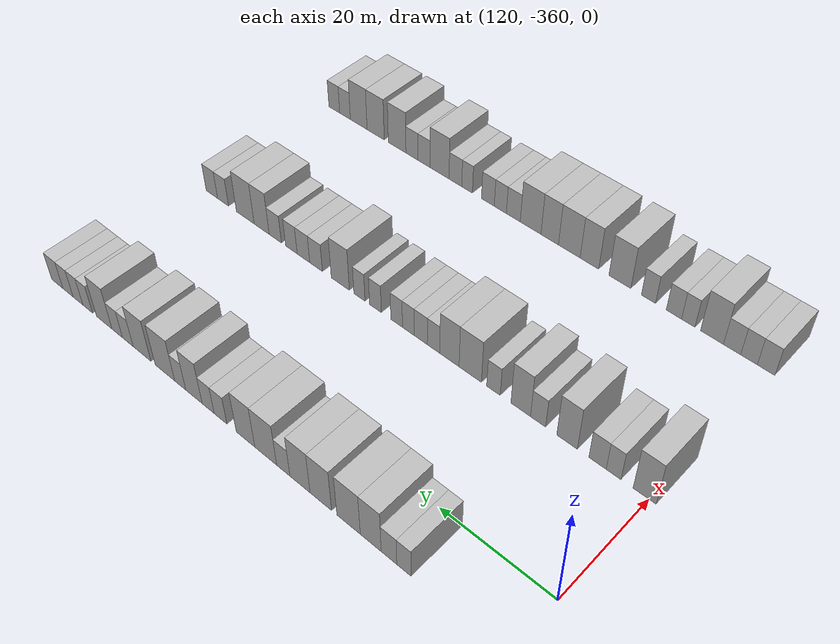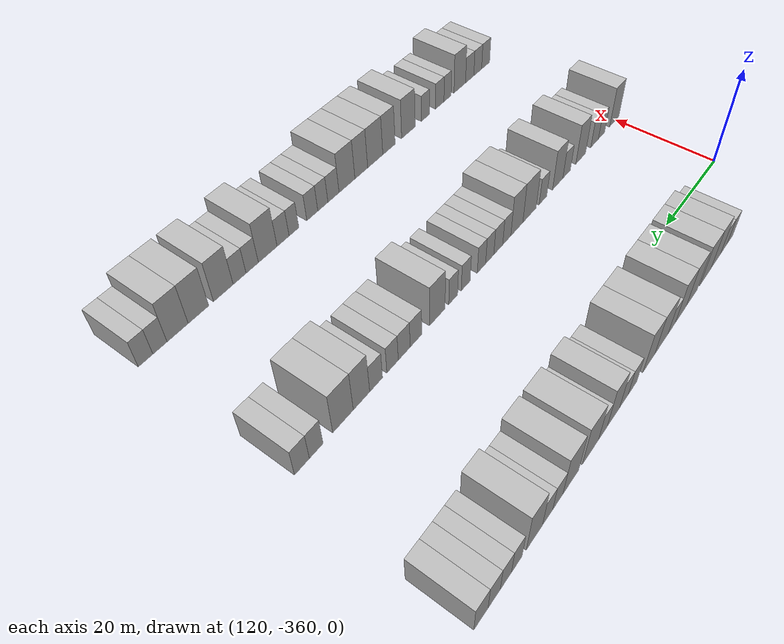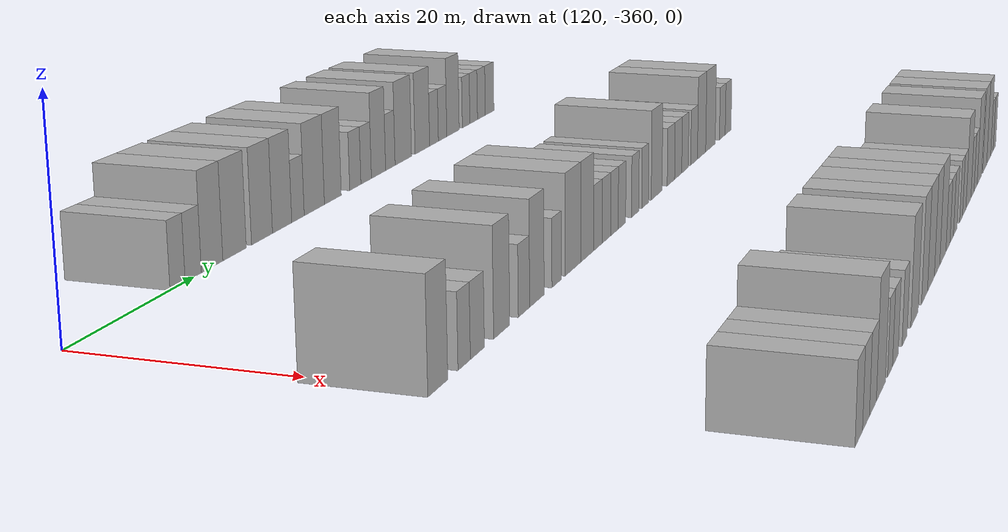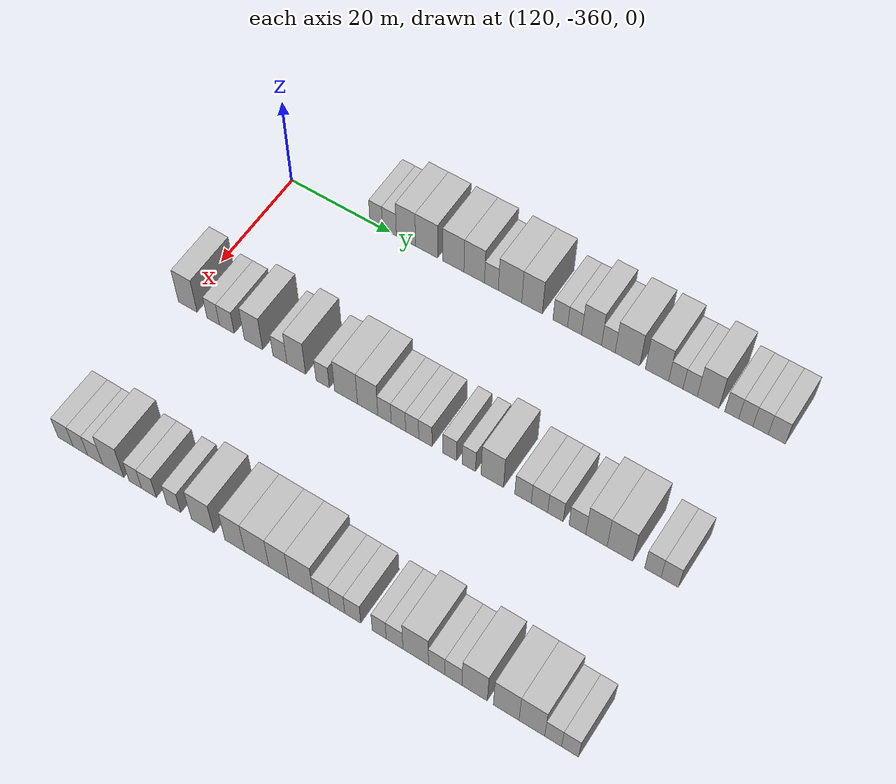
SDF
<sdf version="1.6">
 <world name="default">
  <model name="building_711">
   <static>1</static>
   <pose>115.0000 -342.8300 0 0.000000 0.000000 0.000000</pose>
   <link name="link">
    <pose>0 0 3.00 0 0 0</pose>
    <collision name="collision"><geometry><box><size>10.0000 2.5197 6.0000</size></box></geometry></collision>
    <visual name="visual">
     <cast_shadows>0</cast_shadows>
     <geometry><box><size>10.0000 2.5197 6.0000</size></box></geometry>
     <material>
      <script>
       <uri>model://HANNAS_wall/materials/scripts</uri>
       <uri>model://HANNAS_wall/materials/textures</uri>
       <name>vrc/HANNAS_wall</name>
      </script>
     </material>
    </visual>
   </link>
  </model>
  <model name="building_712">
   <static>1</static>
   <pose>115.0000 -340.1824 0 0.000000 0.000000 0.000000</pose>
   <link name="link">
    <pose>0 0 3.00 0 0 0</pose>
    <collision name="collision"><geometry><box><size>10.0000 2.7754 6.0000</size></box></geometry></collision>
    <visual name="visual">
     <cast_shadows>0</cast_shadows>
     <geometry><box><size>10.0000 2.7754 6.0000</size></box></geometry>
     <material>
      <script>
       <uri>model://HANNAS_wall/materials/scripts</uri>
       <uri>model://HANNAS_wall/materials/textures</uri>
       <name>vrc/HANNAS_wall</name>
      </script>
     </material>
    </visual>
   </link>
  </model>
  <model name="building_713">
   <static>1</static>
   <pose>115.0000 -336.8974 0 0.000000 0.000000 0.000000</pose>
   <link name="link">
    <pose>0 0 4.50 0 0 0</pose>
    <collision name="collision"><geometry><box><size>10.0000 3.7946 9.0000</size></box></geometry></collision>
    <visual name="visual">
     <cast_shadows>0</cast_shadows>
     <geometry><box><size>10.0000 3.7946 9.0000</size></box></geometry>
     <material>
      <script>
       <uri>model://HANNAS_wall/materials/scripts</uri>
       <uri>model://HANNAS_wall/materials/textures</uri>
       <name>vrc/HANNAS_wall</name>
      </script>
     </material>
    </visual>
   </link>
  </model>
  <model name="building_714">
   <static>1</static>
   <pose>115.0000 -332.8246 0 0.000000 0.000000 0.000000</pose>
   <link name="link">
    <pose>0 0 4.50 0 0 0</pose>
    <collision name="collision"><geometry><box><size>10.0000 4.3511 9.0000</size></box></geometry></collision>
    <visual name="visual">
     <cast_shadows>0</cast_shadows>
     <geometry><box><size>10.0000 4.3511 9.0000</size></box></geometry>
     <material>
      <script>
       <uri>model://HANNAS_wall/materials/scripts</uri>
       <uri>model://HANNAS_wall/materials/textures</uri>
       <name>vrc/HANNAS_wall</name>
      </script>
     </material>
    </visual>
   </link>
  </model>
  <model name="building_715">
   <static>1</static>
   <pose>115.0000 -327.5867 0 0.000000 0.000000 0.000000</pose>
   <link name="link">
    <pose>0 0 4.50 0 0 0</pose>
    <collision name="collision"><geometry><box><size>10.0000 4.1246 9.0000</size></box></geometry></collision>
    <visual name="visual">
     <cast_shadows>0</cast_shadows>
     <geometry><box><size>10.0000 4.1246 9.0000</size></box></geometry>
     <material>
      <script>
       <uri>model://HANNAS_wall/materials/scripts</uri>
       <uri>model://HANNAS_wall/materials/textures</uri>
       <name>vrc/HANNAS_wall</name>
      </script>
     </material>
    </visual>
   </link>
  </model>
  <model name="building_716">
   <static>1</static>
   <pose>115.0000 -323.5428 0 0.000000 0.000000 0.000000</pose>
   <link name="link">
    <pose>0 0 4.50 0 0 0</pose>
    <collision name="collision"><geometry><box><size>10.0000 3.9632 9.0000</size></box></geometry></collision>
    <visual name="visual">
     <cast_shadows>0</cast_shadows>
     <geometry><box><size>10.0000 3.9632 9.0000</size></box></geometry>
     <material>
      <script>
       <uri>model://HANNAS_wall/materials/scripts</uri>
       <uri>model://HANNAS_wall/materials/textures</uri>
       <name>vrc/HANNAS_wall</name>
      </script>
     </material>
    </visual>
   </link>
  </model>
  <model name="building_717">
   <static>1</static>
   <pose>115.0000 -320.2354 0 0.000000 0.000000 0.000000</pose>
   <link name="link">
    <pose>0 0 3.00 0 0 0</pose>
    <collision name="collision"><geometry><box><size>10.0000 2.6515 6.0000</size></box></geometry></collision>
    <visual name="visual">
     <cast_shadows>0</cast_shadows>
     <geometry><box><size>10.0000 2.6515 6.0000</size></box></geometry>
     <material>
      <script>
       <uri>model://HANNAS_wall/materials/scripts</uri>
       <uri>model://HANNAS_wall/materials/textures</uri>
       <name>vrc/HANNAS_wall</name>
      </script>
     </material>
    </visual>
   </link>
  </model>
  <model name="building_718">
   <static>1</static>
   <pose>115.0000 -316.6786 0 0.000000 0.000000 0.000000</pose>
   <link name="link">
    <pose>0 0 4.50 0 0 0</pose>
    <collision name="collision"><geometry><box><size>10.0000 4.4620 9.0000</size></box></geometry></collision>
    <visual name="visual">
     <cast_shadows>0</cast_shadows>
     <geometry><box><size>10.0000 4.4620 9.0000</size></box></geometry>
     <material>
      <script>
       <uri>model://HANNAS_wall/materials/scripts</uri>
       <uri>model://HANNAS_wall/materials/textures</uri>
       <name>vrc/HANNAS_wall</name>
      </script>
     </material>
    </visual>
   </link>
  </model>
  <model name="building_719">
   <static>1</static>
   <pose>115.0000 -312.5042 0 0.000000 0.000000 0.000000</pose>
   <link name="link">
    <pose>0 0 4.50 0 0 0</pose>
    <collision name="collision"><geometry><box><size>10.0000 3.8867 9.0000</size></box></geometry></collision>
    <visual name="visual">
     <cast_shadows>0</cast_shadows>
     <geometry><box><size>10.0000 3.8867 9.0000</size></box></geometry>
     <material>
      <script>
       <uri>model://HANNAS_wall/materials/scripts</uri>
       <uri>model://HANNAS_wall/materials/textures</uri>
       <name>vrc/HANNAS_wall</name>
      </script>
     </material>
    </visual>
   </link>
  </model>
  <model name="building_720">
   <static>1</static>
   <pose>115.0000 -307.1983 0 0.000000 0.000000 0.000000</pose>
   <link name="link">
    <pose>0 0 3.00 0 0 0</pose>
    <collision name="collision"><geometry><box><size>10.0000 2.7251 6.0000</size></box></geometry></collision>
    <visual name="visual">
     <cast_shadows>0</cast_shadows>
     <geometry><box><size>10.0000 2.7251 6.0000</size></box></geometry>
     <material>
      <script>
       <uri>model://HANNAS_wall/materials/scripts</uri>
       <uri>model://HANNAS_wall/materials/textures</uri>
       <name>vrc/HANNAS_wall</name>
      </script>
     </material>
    </visual>
   </link>
  </model>
  <model name="building_721">
   <static>1</static>
   <pose>115.0000 -304.5251 0 0.000000 0.000000 0.000000</pose>
   <link name="link">
    <pose>0 0 3.00 0 0 0</pose>
    <collision name="collision"><geometry><box><size>10.0000 2.6214 6.0000</size></box></geometry></collision>
    <visual name="visual">
     <cast_shadows>0</cast_shadows>
     <geometry><box><size>10.0000 2.6214 6.0000</size></box></geometry>
     <material>
      <script>
       <uri>model://HANNAS_wall/materials/scripts</uri>
       <uri>model://HANNAS_wall/materials/textures</uri>
       <name>vrc/HANNAS_wall</name>
      </script>
     </material>
    </visual>
   </link>
  </model>
  <model name="building_722">
   <static>1</static>
   <pose>115.0000 -301.3845 0 0.000000 0.000000 0.000000</pose>
   <link name="link">
    <pose>0 0 4.50 0 0 0</pose>
    <collision name="collision"><geometry><box><size>10.0000 3.6598 9.0000</size></box></geometry></collision>
    <visual name="visual">
     <cast_shadows>0</cast_shadows>
     <geometry><box><size>10.0000 3.6598 9.0000</size></box></geometry>
     <material>
      <script>
       <uri>model://HANNAS_wall/materials/scripts</uri>
       <uri>model://HANNAS_wall/materials/textures</uri>
       <name>vrc/HANNAS_wall</name>
      </script>
     </material>
    </visual>
   </link>
  </model>
  <model name="building_723">
   <static>1</static>
   <pose>115.0000 -298.3051 0 0.000000 0.000000 0.000000</pose>
   <link name="link">
    <pose>0 0 3.00 0 0 0</pose>
    <collision name="collision"><geometry><box><size>10.0000 2.4990 6.0000</size></box></geometry></collision>
    <visual name="visual">
     <cast_shadows>0</cast_shadows>
     <geometry><box><size>10.0000 2.4990 6.0000</size></box></geometry>
     <material>
      <script>
       <uri>model://HANNAS_wall/materials/scripts</uri>
       <uri>model://HANNAS_wall/materials/textures</uri>
       <name>vrc/HANNAS_wall</name>
      </script>
     </material>
    </visual>
   </link>
  </model>
  <model name="building_724">
   <static>1</static>
   <pose>115.0000 -294.8097 0 0.000000 0.000000 0.000000</pose>
   <link name="link">
    <pose>0 0 4.50 0 0 0</pose>
    <collision name="collision"><geometry><box><size>10.0000 4.4918 9.0000</size></box></geometry></collision>
    <visual name="visual">
     <cast_shadows>0</cast_shadows>
     <geometry><box><size>10.0000 4.4918 9.0000</size></box></geometry>
     <material>
      <script>
       <uri>model://HANNAS_wall/materials/scripts</uri>
       <uri>model://HANNAS_wall/materials/textures</uri>
       <name>vrc/HANNAS_wall</name>
      </script>
     </material>
    </visual>
   </link>
  </model>
  <model name="building_725">
   <static>1</static>
   <pose>115.0000 -289.4669 0 0.000000 0.000000 0.000000</pose>
   <link name="link">
    <pose>0 0 4.50 0 0 0</pose>
    <collision name="collision"><geometry><box><size>10.0000 4.1937 9.0000</size></box></geometry></collision>
    <visual name="visual">
     <cast_shadows>0</cast_shadows>
     <geometry><box><size>10.0000 4.1937 9.0000</size></box></geometry>
     <material>
      <script>
       <uri>model://HANNAS_wall/materials/scripts</uri>
       <uri>model://HANNAS_wall/materials/textures</uri>
       <name>vrc/HANNAS_wall</name>
      </script>
     </material>
    </visual>
   </link>
  </model>
  <model name="building_726">
   <static>1</static>
   <pose>115.0000 -286.0790 0 0.000000 0.000000 0.000000</pose>
   <link name="link">
    <pose>0 0 3.00 0 0 0</pose>
    <collision name="collision"><geometry><box><size>10.0000 2.5822 6.0000</size></box></geometry></collision>
    <visual name="visual">
     <cast_shadows>0</cast_shadows>
     <geometry><box><size>10.0000 2.5822 6.0000</size></box></geometry>
     <material>
      <script>
       <uri>model://HANNAS_wall/materials/scripts</uri>
       <uri>model://HANNAS_wall/materials/textures</uri>
       <name>vrc/HANNAS_wall</name>
      </script>
     </material>
    </visual>
   </link>
  </model>
  <model name="building_727">
   <static>1</static>
   <pose>115.0000 -283.5156 0 0.000000 0.000000 0.000000</pose>
   <link name="link">
    <pose>0 0 3.00 0 0 0</pose>
    <collision name="collision"><geometry><box><size>10.0000 2.5445 6.0000</size></box></geometry></collision>
    <visual name="visual">
     <cast_shadows>0</cast_shadows>
     <geometry><box><size>10.0000 2.5445 6.0000</size></box></geometry>
     <material>
      <script>
       <uri>model://HANNAS_wall/materials/scripts</uri>
       <uri>model://HANNAS_wall/materials/textures</uri>
       <name>vrc/HANNAS_wall</name>
      </script>
     </material>
    </visual>
   </link>
  </model>
  <model name="building_728">
   <static>1</static>
   <pose>115.0000 -280.3135 0 0.000000 0.000000 0.000000</pose>
   <link name="link">
    <pose>0 0 4.50 0 0 0</pose>
    <collision name="collision"><geometry><box><size>10.0000 3.8596 9.0000</size></box></geometry></collision>
    <visual name="visual">
     <cast_shadows>0</cast_shadows>
     <geometry><box><size>10.0000 3.8596 9.0000</size></box></geometry>
     <material>
      <script>
       <uri>model://HANNAS_wall/materials/scripts</uri>
       <uri>model://HANNAS_wall/materials/textures</uri>
       <name>vrc/HANNAS_wall</name>
      </script>
     </material>
    </visual>
   </link>
  </model>
  <model name="building_729">
   <static>1</static>
   <pose>115.0000 -276.1591 0 0.000000 0.000000 0.000000</pose>
   <link name="link">
    <pose>0 0 3.00 0 0 0</pose>
    <collision name="collision"><geometry><box><size>10.0000 2.4493 6.0000</size></box></geometry></collision>
    <visual name="visual">
     <cast_shadows>0</cast_shadows>
     <geometry><box><size>10.0000 2.4493 6.0000</size></box></geometry>
     <material>
      <script>
       <uri>model://HANNAS_wall/materials/scripts</uri>
       <uri>model://HANNAS_wall/materials/textures</uri>
       <name>vrc/HANNAS_wall</name>
      </script>
     </material>
    </visual>
   </link>
  </model>
  <model name="building_730">
   <static>1</static>
   <pose>115.0000 -273.6855 0 0.000000 0.000000 0.000000</pose>
   <link name="link">
    <pose>0 0 3.00 0 0 0</pose>
    <collision name="collision"><geometry><box><size>10.0000 2.4980 6.0000</size></box></geometry></collision>
    <visual name="visual">
     <cast_shadows>0</cast_shadows>
     <geometry><box><size>10.0000 2.4980 6.0000</size></box></geometry>
     <material>
      <script>
       <uri>model://HANNAS_wall/materials/scripts</uri>
       <uri>model://HANNAS_wall/materials/textures</uri>
       <name>vrc/HANNAS_wall</name>
      </script>
     </material>
    </visual>
   </link>
  </model>
  <model name="building_731">
   <static>1</static>
   <pose>115.0000 -271.1199 0 0.000000 0.000000 0.000000</pose>
   <link name="link">
    <pose>0 0 3.00 0 0 0</pose>
    <collision name="collision"><geometry><box><size>10.0000 2.6331 6.0000</size></box></geometry></collision>
    <visual name="visual">
     <cast_shadows>0</cast_shadows>
     <geometry><box><size>10.0000 2.6331 6.0000</size></box></geometry>
     <material>
      <script>
       <uri>model://HANNAS_wall/materials/scripts</uri>
       <uri>model://HANNAS_wall/materials/textures</uri>
       <name>vrc/HANNAS_wall</name>
      </script>
     </material>
    </visual>
   </link>
  </model>
  <model name="building_732">
   <static>1</static>
   <pose>115.0000 -268.3117 0 0.000000 0.000000 0.000000</pose>
   <link name="link">
    <pose>0 0 3.00 0 0 0</pose>
    <collision name="collision"><geometry><box><size>10.0000 2.9835 6.0000</size></box></geometry></collision>
    <visual name="visual">
     <cast_shadows>0</cast_shadows>
     <geometry><box><size>10.0000 2.9835 6.0000</size></box></geometry>
     <material>
      <script>
       <uri>model://HANNAS_wall/materials/scripts</uri>
       <uri>model://HANNAS_wall/materials/textures</uri>
       <name>vrc/HANNAS_wall</name>
      </script>
     </material>
    </visual>
   </link>
  </model>
  <model name="building_937">
   <static>1</static>
   <pose>145.0000 -359.2650 0 0.000000 0.000000 0.000000</pose>
   <link name="link">
    <pose>0 0 4.50 0 0 0</pose>
    <collision name="collision"><geometry><box><size>10.0000 3.7671 9.0000</size></box></geometry></collision>
    <visual name="visual">
     <cast_shadows>0</cast_shadows>
     <geometry><box><size>10.0000 3.7671 9.0000</size></box></geometry>
     <material>
      <script>
       <uri>model://HANNAS_wall/materials/scripts</uri>
       <uri>model://HANNAS_wall/materials/textures</uri>
       <name>vrc/HANNAS_wall</name>
      </script>
     </material>
    </visual>
   </link>
  </model>
  <model name="building_938">
   <static>1</static>
   <pose>145.0000 -354.1302 0 0.000000 0.000000 0.000000</pose>
   <link name="link">
    <pose>0 0 3.00 0 0 0</pose>
    <collision name="collision"><geometry><box><size>10.0000 2.5025 6.0000</size></box></geometry></collision>
    <visual name="visual">
     <cast_shadows>0</cast_shadows>
     <geometry><box><size>10.0000 2.5025 6.0000</size></box></geometry>
     <material>
      <script>
       <uri>model://HANNAS_wall/materials/scripts</uri>
       <uri>model://HANNAS_wall/materials/textures</uri>
       <name>vrc/HANNAS_wall</name>
      </script>
     </material>
    </visual>
   </link>
  </model>
  <model name="building_939">
   <static>1</static>
   <pose>145.0000 -351.4086 0 0.000000 0.000000 0.000000</pose>
   <link name="link">
    <pose>0 0 3.00 0 0 0</pose>
    <collision name="collision"><geometry><box><size>10.0000 2.9406 6.0000</size></box></geometry></collision>
    <visual name="visual">
     <cast_shadows>0</cast_shadows>
     <geometry><box><size>10.0000 2.9406 6.0000</size></box></geometry>
     <material>
      <script>
       <uri>model://HANNAS_wall/materials/scripts</uri>
       <uri>model://HANNAS_wall/materials/textures</uri>
       <name>vrc/HANNAS_wall</name>
      </script>
     </material>
    </visual>
   </link>
  </model>
  <model name="building_940">
   <static>1</static>
   <pose>145.0000 -346.1285 0 0.000000 0.000000 0.000000</pose>
   <link name="link">
    <pose>0 0 4.50 0 0 0</pose>
    <collision name="collision"><geometry><box><size>10.0000 3.6195 9.0000</size></box></geometry></collision>
    <visual name="visual">
     <cast_shadows>0</cast_shadows>
     <geometry><box><size>10.0000 3.6195 9.0000</size></box></geometry>
     <material>
      <script>
       <uri>model://HANNAS_wall/materials/scripts</uri>
       <uri>model://HANNAS_wall/materials/textures</uri>
       <name>vrc/HANNAS_wall</name>
      </script>
     </material>
    </visual>
   </link>
  </model>
  <model name="building_941">
   <static>1</static>
   <pose>145.0000 -340.9537 0 0.000000 0.000000 0.000000</pose>
   <link name="link">
    <pose>0 0 3.00 0 0 0</pose>
    <collision name="collision"><geometry><box><size>10.0000 2.7301 6.0000</size></box></geometry></collision>
    <visual name="visual">
     <cast_shadows>0</cast_shadows>
     <geometry><box><size>10.0000 2.7301 6.0000</size></box></geometry>
     <material>
      <script>
       <uri>model://HANNAS_wall/materials/scripts</uri>
       <uri>model://HANNAS_wall/materials/textures</uri>
       <name>vrc/HANNAS_wall</name>
      </script>
     </material>
    </visual>
   </link>
  </model>
  <model name="building_942">
   <static>1</static>
   <pose>145.0000 -337.7858 0 0.000000 0.000000 0.000000</pose>
   <link name="link">
    <pose>0 0 4.50 0 0 0</pose>
    <collision name="collision"><geometry><box><size>10.0000 3.6058 9.0000</size></box></geometry></collision>
    <visual name="visual">
     <cast_shadows>0</cast_shadows>
     <geometry><box><size>10.0000 3.6058 9.0000</size></box></geometry>
     <material>
      <script>
       <uri>model://HANNAS_wall/materials/scripts</uri>
       <uri>model://HANNAS_wall/materials/textures</uri>
       <name>vrc/HANNAS_wall</name>
      </script>
     </material>
    </visual>
   </link>
  </model>
  <model name="building_943">
   <static>1</static>
   <pose>145.0000 -332.6990 0 0.000000 0.000000 0.000000</pose>
   <link name="link">
    <pose>0 0 3.00 0 0 0</pose>
    <collision name="collision"><geometry><box><size>10.0000 2.5679 6.0000</size></box></geometry></collision>
    <visual name="visual">
     <cast_shadows>0</cast_shadows>
     <geometry><box><size>10.0000 2.5679 6.0000</size></box></geometry>
     <material>
      <script>
       <uri>model://HANNAS_wall/materials/scripts</uri>
       <uri>model://HANNAS_wall/materials/textures</uri>
       <name>vrc/HANNAS_wall</name>
      </script>
     </material>
    </visual>
   </link>
  </model>
  <model name="building_944">
   <static>1</static>
   <pose>145.0000 -328.2437 0 0.000000 0.000000 0.000000</pose>
   <link name="link">
    <pose>0 0 4.50 0 0 0</pose>
    <collision name="collision"><geometry><box><size>10.0000 4.3427 9.0000</size></box></geometry></collision>
    <visual name="visual">
     <cast_shadows>0</cast_shadows>
     <geometry><box><size>10.0000 4.3427 9.0000</size></box></geometry>
     <material>
      <script>
       <uri>model://HANNAS_wall/materials/scripts</uri>
       <uri>model://HANNAS_wall/materials/textures</uri>
       <name>vrc/HANNAS_wall</name>
      </script>
     </material>
    </visual>
   </link>
  </model>
  <model name="building_945">
   <static>1</static>
   <pose>145.0000 -324.1624 0 0.000000 0.000000 0.000000</pose>
   <link name="link">
    <pose>0 0 4.50 0 0 0</pose>
    <collision name="collision"><geometry><box><size>10.0000 3.8198 9.0000</size></box></geometry></collision>
    <visual name="visual">
     <cast_shadows>0</cast_shadows>
     <geometry><box><size>10.0000 3.8198 9.0000</size></box></geometry>
     <material>
      <script>
       <uri>model://HANNAS_wall/materials/scripts</uri>
       <uri>model://HANNAS_wall/materials/textures</uri>
       <name>vrc/HANNAS_wall</name>
      </script>
     </material>
    </visual>
   </link>
  </model>
  <model name="building_946">
   <static>1</static>
   <pose>145.0000 -321.0041 0 0.000000 0.000000 0.000000</pose>
   <link name="link">
    <pose>0 0 3.00 0 0 0</pose>
    <collision name="collision"><geometry><box><size>10.0000 2.4968 6.0000</size></box></geometry></collision>
    <visual name="visual">
     <cast_shadows>0</cast_shadows>
     <geometry><box><size>10.0000 2.4968 6.0000</size></box></geometry>
     <material>
      <script>
       <uri>model://HANNAS_wall/materials/scripts</uri>
       <uri>model://HANNAS_wall/materials/textures</uri>
       <name>vrc/HANNAS_wall</name>
      </script>
     </material>
    </visual>
   </link>
  </model>
  <model name="building_947">
   <static>1</static>
   <pose>145.0000 -318.4106 0 0.000000 0.000000 0.000000</pose>
   <link name="link">
    <pose>0 0 3.00 0 0 0</pose>
    <collision name="collision"><geometry><box><size>10.0000 2.6902 6.0000</size></box></geometry></collision>
    <visual name="visual">
     <cast_shadows>0</cast_shadows>
     <geometry><box><size>10.0000 2.6902 6.0000</size></box></geometry>
     <material>
      <script>
       <uri>model://HANNAS_wall/materials/scripts</uri>
       <uri>model://HANNAS_wall/materials/textures</uri>
       <name>vrc/HANNAS_wall</name>
      </script>
     </material>
    </visual>
   </link>
  </model>
  <model name="building_948">
   <static>1</static>
   <pose>145.0000 -315.8543 0 0.000000 0.000000 0.000000</pose>
   <link name="link">
    <pose>0 0 3.00 0 0 0</pose>
    <collision name="collision"><geometry><box><size>10.0000 2.4224 6.0000</size></box></geometry></collision>
    <visual name="visual">
     <cast_shadows>0</cast_shadows>
     <geometry><box><size>10.0000 2.4224 6.0000</size></box></geometry>
     <material>
      <script>
       <uri>model://HANNAS_wall/materials/scripts</uri>
       <uri>model://HANNAS_wall/materials/textures</uri>
       <name>vrc/HANNAS_wall</name>
      </script>
     </material>
    </visual>
   </link>
  </model>
  <model name="building_949">
   <static>1</static>
   <pose>145.0000 -313.4280 0 0.000000 0.000000 0.000000</pose>
   <link name="link">
    <pose>0 0 3.00 0 0 0</pose>
    <collision name="collision"><geometry><box><size>10.0000 2.4303 6.0000</size></box></geometry></collision>
    <visual name="visual">
     <cast_shadows>0</cast_shadows>
     <geometry><box><size>10.0000 2.4303 6.0000</size></box></geometry>
     <material>
      <script>
       <uri>model://HANNAS_wall/materials/scripts</uri>
       <uri>model://HANNAS_wall/materials/textures</uri>
       <name>vrc/HANNAS_wall</name>
      </script>
     </material>
    </visual>
   </link>
  </model>
  <model name="building_950">
   <static>1</static>
   <pose>145.0000 -308.9562 0 0.000000 0.000000 0.000000</pose>
   <link name="link">
    <pose>0 0 3.00 0 0 0</pose>
    <collision name="collision"><geometry><box><size>10.0000 2.5133 6.0000</size></box></geometry></collision>
    <visual name="visual">
     <cast_shadows>0</cast_shadows>
     <geometry><box><size>10.0000 2.5133 6.0000</size></box></geometry>
     <material>
      <script>
       <uri>model://HANNAS_wall/materials/scripts</uri>
       <uri>model://HANNAS_wall/materials/textures</uri>
       <name>vrc/HANNAS_wall</name>
      </script>
     </material>
    </visual>
   </link>
  </model>
  <model name="building_951">
   <static>1</static>
   <pose>145.0000 -305.4920 0 0.000000 0.000000 0.000000</pose>
   <link name="link">
    <pose>0 0 3.00 0 0 0</pose>
    <collision name="collision"><geometry><box><size>10.0000 2.4150 6.0000</size></box></geometry></collision>
    <visual name="visual">
     <cast_shadows>0</cast_shadows>
     <geometry><box><size>10.0000 2.4150 6.0000</size></box></geometry>
     <material>
      <script>
       <uri>model://HANNAS_wall/materials/scripts</uri>
       <uri>model://HANNAS_wall/materials/textures</uri>
       <name>vrc/HANNAS_wall</name>
      </script>
     </material>
    </visual>
   </link>
  </model>
  <model name="building_952">
   <static>1</static>
   <pose>145.0000 -301.2742 0 0.000000 0.000000 0.000000</pose>
   <link name="link">
    <pose>0 0 4.50 0 0 0</pose>
    <collision name="collision"><geometry><box><size>10.0000 4.0207 9.0000</size></box></geometry></collision>
    <visual name="visual">
     <cast_shadows>0</cast_shadows>
     <geometry><box><size>10.0000 4.0207 9.0000</size></box></geometry>
     <material>
      <script>
       <uri>model://HANNAS_wall/materials/scripts</uri>
       <uri>model://HANNAS_wall/materials/textures</uri>
       <name>vrc/HANNAS_wall</name>
      </script>
     </material>
    </visual>
   </link>
  </model>
  <model name="building_953">
   <static>1</static>
   <pose>145.0000 -295.8078 0 0.000000 0.000000 0.000000</pose>
   <link name="link">
    <pose>0 0 3.00 0 0 0</pose>
    <collision name="collision"><geometry><box><size>10.0000 2.9121 6.0000</size></box></geometry></collision>
    <visual name="visual">
     <cast_shadows>0</cast_shadows>
     <geometry><box><size>10.0000 2.9121 6.0000</size></box></geometry>
     <material>
      <script>
       <uri>model://HANNAS_wall/materials/scripts</uri>
       <uri>model://HANNAS_wall/materials/textures</uri>
       <name>vrc/HANNAS_wall</name>
      </script>
     </material>
    </visual>
   </link>
  </model>
  <model name="building_954">
   <static>1</static>
   <pose>145.0000 -292.9018 0 0.000000 0.000000 0.000000</pose>
   <link name="link">
    <pose>0 0 3.00 0 0 0</pose>
    <collision name="collision"><geometry><box><size>10.0000 2.9000 6.0000</size></box></geometry></collision>
    <visual name="visual">
     <cast_shadows>0</cast_shadows>
     <geometry><box><size>10.0000 2.9000 6.0000</size></box></geometry>
     <material>
      <script>
       <uri>model://HANNAS_wall/materials/scripts</uri>
       <uri>model://HANNAS_wall/materials/textures</uri>
       <name>vrc/HANNAS_wall</name>
      </script>
     </material>
    </visual>
   </link>
  </model>
  <model name="building_955">
   <static>1</static>
   <pose>145.0000 -290.0953 0 0.000000 0.000000 0.000000</pose>
   <link name="link">
    <pose>0 0 3.00 0 0 0</pose>
    <collision name="collision"><geometry><box><size>10.0000 2.7130 6.0000</size></box></geometry></collision>
    <visual name="visual">
     <cast_shadows>0</cast_shadows>
     <geometry><box><size>10.0000 2.7130 6.0000</size></box></geometry>
     <material>
      <script>
       <uri>model://HANNAS_wall/materials/scripts</uri>
       <uri>model://HANNAS_wall/materials/textures</uri>
       <name>vrc/HANNAS_wall</name>
      </script>
     </material>
    </visual>
   </link>
  </model>
  <model name="building_956">
   <static>1</static>
   <pose>145.0000 -286.2714 0 0.000000 0.000000 0.000000</pose>
   <link name="link">
    <pose>0 0 3.00 0 0 0</pose>
    <collision name="collision"><geometry><box><size>10.0000 2.9348 6.0000</size></box></geometry></collision>
    <visual name="visual">
     <cast_shadows>0</cast_shadows>
     <geometry><box><size>10.0000 2.9348 6.0000</size></box></geometry>
     <material>
      <script>
       <uri>model://HANNAS_wall/materials/scripts</uri>
       <uri>model://HANNAS_wall/materials/textures</uri>
       <name>vrc/HANNAS_wall</name>
      </script>
     </material>
    </visual>
   </link>
  </model>
  <model name="building_957">
   <static>1</static>
   <pose>145.0000 -282.9762 0 0.000000 0.000000 0.000000</pose>
   <link name="link">
    <pose>0 0 4.50 0 0 0</pose>
    <collision name="collision"><geometry><box><size>10.0000 3.6557 9.0000</size></box></geometry></collision>
    <visual name="visual">
     <cast_shadows>0</cast_shadows>
     <geometry><box><size>10.0000 3.6557 9.0000</size></box></geometry>
     <material>
      <script>
       <uri>model://HANNAS_wall/materials/scripts</uri>
       <uri>model://HANNAS_wall/materials/textures</uri>
       <name>vrc/HANNAS_wall</name>
      </script>
     </material>
    </visual>
   </link>
  </model>
  <model name="building_958">
   <static>1</static>
   <pose>145.0000 -278.9480 0 0.000000 0.000000 0.000000</pose>
   <link name="link">
    <pose>0 0 4.50 0 0 0</pose>
    <collision name="collision"><geometry><box><size>10.0000 4.4007 9.0000</size></box></geometry></collision>
    <visual name="visual">
     <cast_shadows>0</cast_shadows>
     <geometry><box><size>10.0000 4.4007 9.0000</size></box></geometry>
     <material>
      <script>
       <uri>model://HANNAS_wall/materials/scripts</uri>
       <uri>model://HANNAS_wall/materials/textures</uri>
       <name>vrc/HANNAS_wall</name>
      </script>
     </material>
    </visual>
   </link>
  </model>
  <model name="building_959">
   <static>1</static>
   <pose>145.0000 -273.3610 0 0.000000 0.000000 0.000000</pose>
   <link name="link">
    <pose>0 0 3.00 0 0 0</pose>
    <collision name="collision"><geometry><box><size>10.0000 2.7732 6.0000</size></box></geometry></collision>
    <visual name="visual">
     <cast_shadows>0</cast_shadows>
     <geometry><box><size>10.0000 2.7732 6.0000</size></box></geometry>
     <material>
      <script>
       <uri>model://HANNAS_wall/materials/scripts</uri>
       <uri>model://HANNAS_wall/materials/textures</uri>
       <name>vrc/HANNAS_wall</name>
      </script>
     </material>
    </visual>
   </link>
  </model>
  <model name="building_960">
   <static>1</static>
   <pose>145.0000 -270.5081 0 0.000000 0.000000 0.000000</pose>
   <link name="link">
    <pose>0 0 3.00 0 0 0</pose>
    <collision name="collision"><geometry><box><size>10.0000 2.9324 6.0000</size></box></geometry></collision>
    <visual name="visual">
     <cast_shadows>0</cast_shadows>
     <geometry><box><size>10.0000 2.9324 6.0000</size></box></geometry>
     <material>
      <script>
       <uri>model://HANNAS_wall/materials/scripts</uri>
       <uri>model://HANNAS_wall/materials/textures</uri>
       <name>vrc/HANNAS_wall</name>
      </script>
     </material>
    </visual>
   </link>
  </model>
  <model name="building_1162">
   <static>1</static>
   <pose>175.0000 -360.0088 0 0.000000 0.000000 0.000000</pose>
   <link name="link">
    <pose>0 0 3.00 0 0 0</pose>
    <collision name="collision"><geometry><box><size>10.0000 2.9721 6.0000</size></box></geometry></collision>
    <visual name="visual">
     <cast_shadows>0</cast_shadows>
     <geometry><box><size>10.0000 2.9721 6.0000</size></box></geometry>
     <material>
      <script>
       <uri>model://HANNAS_wall/materials/scripts</uri>
       <uri>model://HANNAS_wall/materials/textures</uri>
       <name>vrc/HANNAS_wall</name>
      </script>
     </material>
    </visual>
   </link>
  </model>
  <model name="building_1163">
   <static>1</static>
   <pose>175.0000 -357.0963 0 0.000000 0.000000 0.000000</pose>
   <link name="link">
    <pose>0 0 3.00 0 0 0</pose>
    <collision name="collision"><geometry><box><size>10.0000 2.8529 6.0000</size></box></geometry></collision>
    <visual name="visual">
     <cast_shadows>0</cast_shadows>
     <geometry><box><size>10.0000 2.8529 6.0000</size></box></geometry>
     <material>
      <script>
       <uri>model://HANNAS_wall/materials/scripts</uri>
       <uri>model://HANNAS_wall/materials/textures</uri>
       <name>vrc/HANNAS_wall</name>
      </script>
     </material>
    </visual>
   </link>
  </model>
  <model name="building_1164">
   <static>1</static>
   <pose>175.0000 -354.1758 0 0.000000 0.000000 0.000000</pose>
   <link name="link">
    <pose>0 0 3.00 0 0 0</pose>
    <collision name="collision"><geometry><box><size>10.0000 2.9881 6.0000</size></box></geometry></collision>
    <visual name="visual">
     <cast_shadows>0</cast_shadows>
     <geometry><box><size>10.0000 2.9881 6.0000</size></box></geometry>
     <material>
      <script>
       <uri>model://HANNAS_wall/materials/scripts</uri>
       <uri>model://HANNAS_wall/materials/textures</uri>
       <name>vrc/HANNAS_wall</name>
      </script>
     </material>
    </visual>
   </link>
  </model>
  <model name="building_1165">
   <static>1</static>
   <pose>175.0000 -350.6470 0 0.000000 0.000000 0.000000</pose>
   <link name="link">
    <pose>0 0 4.50 0 0 0</pose>
    <collision name="collision"><geometry><box><size>10.0000 4.0694 9.0000</size></box></geometry></collision>
    <visual name="visual">
     <cast_shadows>0</cast_shadows>
     <geometry><box><size>10.0000 4.0694 9.0000</size></box></geometry>
     <material>
      <script>
       <uri>model://HANNAS_wall/materials/scripts</uri>
       <uri>model://HANNAS_wall/materials/textures</uri>
       <name>vrc/HANNAS_wall</name>
      </script>
     </material>
    </visual>
   </link>
  </model>
  <model name="building_1166">
   <static>1</static>
   <pose>175.0000 -346.3978 0 0.000000 0.000000 0.000000</pose>
   <link name="link">
    <pose>0 0 3.00 0 0 0</pose>
    <collision name="collision"><geometry><box><size>10.0000 2.4291 6.0000</size></box></geometry></collision>
    <visual name="visual">
     <cast_shadows>0</cast_shadows>
     <geometry><box><size>10.0000 2.4291 6.0000</size></box></geometry>
     <material>
      <script>
       <uri>model://HANNAS_wall/materials/scripts</uri>
       <uri>model://HANNAS_wall/materials/textures</uri>
       <name>vrc/HANNAS_wall</name>
      </script>
     </material>
    </visual>
   </link>
  </model>
  <model name="building_1167">
   <static>1</static>
   <pose>175.0000 -343.7824 0 0.000000 0.000000 0.000000</pose>
   <link name="link">
    <pose>0 0 3.00 0 0 0</pose>
    <collision name="collision"><geometry><box><size>10.0000 2.8017 6.0000</size></box></geometry></collision>
    <visual name="visual">
     <cast_shadows>0</cast_shadows>
     <geometry><box><size>10.0000 2.8017 6.0000</size></box></geometry>
     <material>
      <script>
       <uri>model://HANNAS_wall/materials/scripts</uri>
       <uri>model://HANNAS_wall/materials/textures</uri>
       <name>vrc/HANNAS_wall</name>
      </script>
     </material>
    </visual>
   </link>
  </model>
  <model name="building_1168">
   <static>1</static>
   <pose>175.0000 -339.0533 0 0.000000 0.000000 0.000000</pose>
   <link name="link">
    <pose>0 0 3.00 0 0 0</pose>
    <collision name="collision"><geometry><box><size>10.0000 2.6564 6.0000</size></box></geometry></collision>
    <visual name="visual">
     <cast_shadows>0</cast_shadows>
     <geometry><box><size>10.0000 2.6564 6.0000</size></box></geometry>
     <material>
      <script>
       <uri>model://HANNAS_wall/materials/scripts</uri>
       <uri>model://HANNAS_wall/materials/textures</uri>
       <name>vrc/HANNAS_wall</name>
      </script>
     </material>
    </visual>
   </link>
  </model>
  <model name="building_1169">
   <static>1</static>
   <pose>175.0000 -333.6044 0 0.000000 0.000000 0.000000</pose>
   <link name="link">
    <pose>0 0 4.50 0 0 0</pose>
    <collision name="collision"><geometry><box><size>10.0000 4.2413 9.0000</size></box></geometry></collision>
    <visual name="visual">
     <cast_shadows>0</cast_shadows>
     <geometry><box><size>10.0000 4.2413 9.0000</size></box></geometry>
     <material>
      <script>
       <uri>model://HANNAS_wall/materials/scripts</uri>
       <uri>model://HANNAS_wall/materials/textures</uri>
       <name>vrc/HANNAS_wall</name>
      </script>
     </material>
    </visual>
   </link>
  </model>
  <model name="building_1170">
   <static>1</static>
   <pose>175.0000 -327.6357 0 0.000000 0.000000 0.000000</pose>
   <link name="link">
    <pose>0 0 4.50 0 0 0</pose>
    <collision name="collision"><geometry><box><size>10.0000 3.6961 9.0000</size></box></geometry></collision>
    <visual name="visual">
     <cast_shadows>0</cast_shadows>
     <geometry><box><size>10.0000 3.6961 9.0000</size></box></geometry>
     <material>
      <script>
       <uri>model://HANNAS_wall/materials/scripts</uri>
       <uri>model://HANNAS_wall/materials/textures</uri>
       <name>vrc/HANNAS_wall</name>
      </script>
     </material>
    </visual>
   </link>
  </model>
  <model name="building_1171">
   <static>1</static>
   <pose>175.0000 -323.5843 0 0.000000 0.000000 0.000000</pose>
   <link name="link">
    <pose>0 0 4.50 0 0 0</pose>
    <collision name="collision"><geometry><box><size>10.0000 4.4068 9.0000</size></box></geometry></collision>
    <visual name="visual">
     <cast_shadows>0</cast_shadows>
     <geometry><box><size>10.0000 4.4068 9.0000</size></box></geometry>
     <material>
      <script>
       <uri>model://HANNAS_wall/materials/scripts</uri>
       <uri>model://HANNAS_wall/materials/textures</uri>
       <name>vrc/HANNAS_wall</name>
      </script>
     </material>
    </visual>
   </link>
  </model>
  <model name="building_1172">
   <static>1</static>
   <pose>175.0000 -319.5746 0 0.000000 0.000000 0.000000</pose>
   <link name="link">
    <pose>0 0 4.50 0 0 0</pose>
    <collision name="collision"><geometry><box><size>10.0000 3.6126 9.0000</size></box></geometry></collision>
    <visual name="visual">
     <cast_shadows>0</cast_shadows>
     <geometry><box><size>10.0000 3.6126 9.0000</size></box></geometry>
     <material>
      <script>
       <uri>model://HANNAS_wall/materials/scripts</uri>
       <uri>model://HANNAS_wall/materials/textures</uri>
       <name>vrc/HANNAS_wall</name>
      </script>
     </material>
    </visual>
   </link>
  </model>
  <model name="building_1173">
   <static>1</static>
   <pose>175.0000 -315.5881 0 0.000000 0.000000 0.000000</pose>
   <link name="link">
    <pose>0 0 4.50 0 0 0</pose>
    <collision name="collision"><geometry><box><size>10.0000 4.3604 9.0000</size></box></geometry></collision>
    <visual name="visual">
     <cast_shadows>0</cast_shadows>
     <geometry><box><size>10.0000 4.3604 9.0000</size></box></geometry>
     <material>
      <script>
       <uri>model://HANNAS_wall/materials/scripts</uri>
       <uri>model://HANNAS_wall/materials/textures</uri>
       <name>vrc/HANNAS_wall</name>
      </script>
     </material>
    </visual>
   </link>
  </model>
  <model name="building_1174">
   <static>1</static>
   <pose>175.0000 -311.9180 0 0.000000 0.000000 0.000000</pose>
   <link name="link">
    <pose>0 0 3.00 0 0 0</pose>
    <collision name="collision"><geometry><box><size>10.0000 2.9798 6.0000</size></box></geometry></collision>
    <visual name="visual">
     <cast_shadows>0</cast_shadows>
     <geometry><box><size>10.0000 2.9798 6.0000</size></box></geometry>
     <material>
      <script>
       <uri>model://HANNAS_wall/materials/scripts</uri>
       <uri>model://HANNAS_wall/materials/textures</uri>
       <name>vrc/HANNAS_wall</name>
      </script>
     </material>
    </visual>
   </link>
  </model>
  <model name="building_1175">
   <static>1</static>
   <pose>175.0000 -309.1082 0 0.000000 0.000000 0.000000</pose>
   <link name="link">
    <pose>0 0 3.00 0 0 0</pose>
    <collision name="collision"><geometry><box><size>10.0000 2.6398 6.0000</size></box></geometry></collision>
    <visual name="visual">
     <cast_shadows>0</cast_shadows>
     <geometry><box><size>10.0000 2.6398 6.0000</size></box></geometry>
     <material>
      <script>
       <uri>model://HANNAS_wall/materials/scripts</uri>
       <uri>model://HANNAS_wall/materials/textures</uri>
       <name>vrc/HANNAS_wall</name>
      </script>
     </material>
    </visual>
   </link>
  </model>
  <model name="building_1176">
   <static>1</static>
   <pose>175.0000 -306.3795 0 0.000000 0.000000 0.000000</pose>
   <link name="link">
    <pose>0 0 3.00 0 0 0</pose>
    <collision name="collision"><geometry><box><size>10.0000 2.8175 6.0000</size></box></geometry></collision>
    <visual name="visual">
     <cast_shadows>0</cast_shadows>
     <geometry><box><size>10.0000 2.8175 6.0000</size></box></geometry>
     <material>
      <script>
       <uri>model://HANNAS_wall/materials/scripts</uri>
       <uri>model://HANNAS_wall/materials/textures</uri>
       <name>vrc/HANNAS_wall</name>
      </script>
     </material>
    </visual>
   </link>
  </model>
  <model name="building_1177">
   <static>1</static>
   <pose>175.0000 -301.7620 0 0.000000 0.000000 0.000000</pose>
   <link name="link">
    <pose>0 0 3.00 0 0 0</pose>
    <collision name="collision"><geometry><box><size>10.0000 2.4176 6.0000</size></box></geometry></collision>
    <visual name="visual">
     <cast_shadows>0</cast_shadows>
     <geometry><box><size>10.0000 2.4176 6.0000</size></box></geometry>
     <material>
      <script>
       <uri>model://HANNAS_wall/materials/scripts</uri>
       <uri>model://HANNAS_wall/materials/textures</uri>
       <name>vrc/HANNAS_wall</name>
      </script>
     </material>
    </visual>
   </link>
  </model>
  <model name="building_1178">
   <static>1</static>
   <pose>175.0000 -299.1040 0 0.000000 0.000000 0.000000</pose>
   <link name="link">
    <pose>0 0 3.00 0 0 0</pose>
    <collision name="collision"><geometry><box><size>10.0000 2.8984 6.0000</size></box></geometry></collision>
    <visual name="visual">
     <cast_shadows>0</cast_shadows>
     <geometry><box><size>10.0000 2.8984 6.0000</size></box></geometry>
     <material>
      <script>
       <uri>model://HANNAS_wall/materials/scripts</uri>
       <uri>model://HANNAS_wall/materials/textures</uri>
       <name>vrc/HANNAS_wall</name>
      </script>
     </material>
    </visual>
   </link>
  </model>
  <model name="building_1179">
   <static>1</static>
   <pose>175.0000 -295.4549 0 0.000000 0.000000 0.000000</pose>
   <link name="link">
    <pose>0 0 4.50 0 0 0</pose>
    <collision name="collision"><geometry><box><size>10.0000 4.3997 9.0000</size></box></geometry></collision>
    <visual name="visual">
     <cast_shadows>0</cast_shadows>
     <geometry><box><size>10.0000 4.3997 9.0000</size></box></geometry>
     <material>
      <script>
       <uri>model://HANNAS_wall/materials/scripts</uri>
       <uri>model://HANNAS_wall/materials/textures</uri>
       <name>vrc/HANNAS_wall</name>
      </script>
     </material>
    </visual>
   </link>
  </model>
  <model name="building_1180">
   <static>1</static>
   <pose>175.0000 -291.8504 0 0.000000 0.000000 0.000000</pose>
   <link name="link">
    <pose>0 0 3.00 0 0 0</pose>
    <collision name="collision"><geometry><box><size>10.0000 2.8094 6.0000</size></box></geometry></collision>
    <visual name="visual">
     <cast_shadows>0</cast_shadows>
     <geometry><box><size>10.0000 2.8094 6.0000</size></box></geometry>
     <material>
      <script>
       <uri>model://HANNAS_wall/materials/scripts</uri>
       <uri>model://HANNAS_wall/materials/textures</uri>
       <name>vrc/HANNAS_wall</name>
      </script>
     </material>
    </visual>
   </link>
  </model>
  <model name="building_1181">
   <static>1</static>
   <pose>175.0000 -289.0068 0 0.000000 0.000000 0.000000</pose>
   <link name="link">
    <pose>0 0 3.00 0 0 0</pose>
    <collision name="collision"><geometry><box><size>10.0000 2.8777 6.0000</size></box></geometry></collision>
    <visual name="visual">
     <cast_shadows>0</cast_shadows>
     <geometry><box><size>10.0000 2.8777 6.0000</size></box></geometry>
     <material>
      <script>
       <uri>model://HANNAS_wall/materials/scripts</uri>
       <uri>model://HANNAS_wall/materials/textures</uri>
       <name>vrc/HANNAS_wall</name>
      </script>
     </material>
    </visual>
   </link>
  </model>
  <model name="building_1182">
   <static>1</static>
   <pose>175.0000 -285.4382 0 0.000000 0.000000 0.000000</pose>
   <link name="link">
    <pose>0 0 4.50 0 0 0</pose>
    <collision name="collision"><geometry><box><size>10.0000 4.2596 9.0000</size></box></geometry></collision>
    <visual name="visual">
     <cast_shadows>0</cast_shadows>
     <geometry><box><size>10.0000 4.2596 9.0000</size></box></geometry>
     <material>
      <script>
       <uri>model://HANNAS_wall/materials/scripts</uri>
       <uri>model://HANNAS_wall/materials/textures</uri>
       <name>vrc/HANNAS_wall</name>
      </script>
     </material>
    </visual>
   </link>
  </model>
  <model name="building_1183">
   <static>1</static>
   <pose>175.0000 -280.1823 0 0.000000 0.000000 0.000000</pose>
   <link name="link">
    <pose>0 0 4.50 0 0 0</pose>
    <collision name="collision"><geometry><box><size>10.0000 4.2521 9.0000</size></box></geometry></collision>
    <visual name="visual">
     <cast_shadows>0</cast_shadows>
     <geometry><box><size>10.0000 4.2521 9.0000</size></box></geometry>
     <material>
      <script>
       <uri>model://HANNAS_wall/materials/scripts</uri>
       <uri>model://HANNAS_wall/materials/textures</uri>
       <name>vrc/HANNAS_wall</name>
      </script>
     </material>
    </visual>
   </link>
  </model>
  <model name="building_1184">
   <static>1</static>
   <pose>175.0000 -275.9515 0 0.000000 0.000000 0.000000</pose>
   <link name="link">
    <pose>0 0 4.50 0 0 0</pose>
    <collision name="collision"><geometry><box><size>10.0000 4.2096 9.0000</size></box></geometry></collision>
    <visual name="visual">
     <cast_shadows>0</cast_shadows>
     <geometry><box><size>10.0000 4.2096 9.0000</size></box></geometry>
     <material>
      <script>
       <uri>model://HANNAS_wall/materials/scripts</uri>
       <uri>model://HANNAS_wall/materials/textures</uri>
       <name>vrc/HANNAS_wall</name>
      </script>
     </material>
    </visual>
   </link>
  </model>
  <model name="building_1185">
   <static>1</static>
   <pose>175.0000 -272.4750 0 0.000000 0.000000 0.000000</pose>
   <link name="link">
    <pose>0 0 3.00 0 0 0</pose>
    <collision name="collision"><geometry><box><size>10.0000 2.7434 6.0000</size></box></geometry></collision>
    <visual name="visual">
     <cast_shadows>0</cast_shadows>
     <geometry><box><size>10.0000 2.7434 6.0000</size></box></geometry>
     <material>
      <script>
       <uri>model://HANNAS_wall/materials/scripts</uri>
       <uri>model://HANNAS_wall/materials/textures</uri>
       <name>vrc/HANNAS_wall</name>
      </script>
     </material>
    </visual>
   </link>
  </model>
  <model name="building_1186">
   <static>1</static>
   <pose>175.0000 -269.7187 0 0.000000 0.000000 0.000000</pose>
   <link name="link">
    <pose>0 0 3.00 0 0 0</pose>
    <collision name="collision"><geometry><box><size>10.0000 2.7692 6.0000</size></box></geometry></collision>
    <visual name="visual">
     <cast_shadows>0</cast_shadows>
     <geometry><box><size>10.0000 2.7692 6.0000</size></box></geometry>
     <material>
      <script>
       <uri>model://HANNAS_wall/materials/scripts</uri>
       <uri>model://HANNAS_wall/materials/textures</uri>
       <name>vrc/HANNAS_wall</name>
      </script>
     </material>
    </visual>
   </link>
  </model>
 </world>
</sdf>
